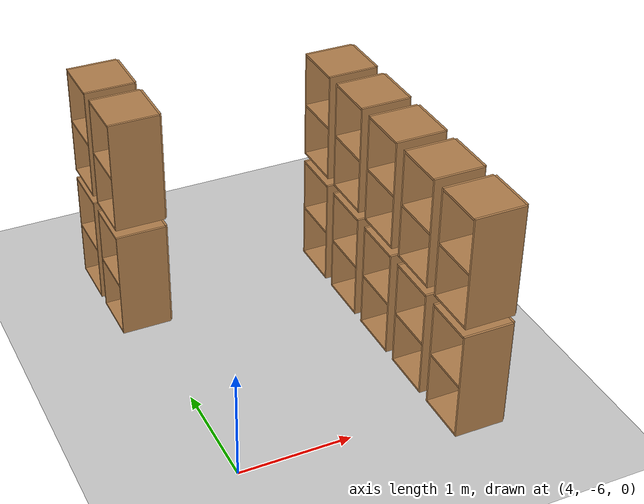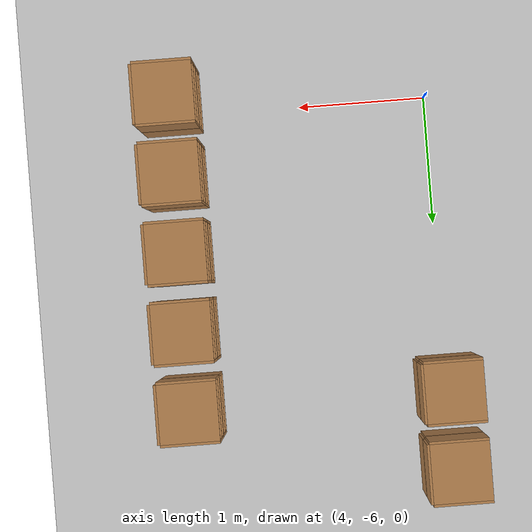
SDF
<sdf version="1.7">
 <world name="default">
  <model name="ground_plane">
   <static>1</static>
   <link name="link">
    <collision name="collision">
     <geometry><plane><normal>0 0 1</normal><size>100 100</size></plane></geometry>
     <surface><friction><ode><mu>100</mu><mu2>50</mu2></ode></friction></surface>
    </collision>
    <visual name="visual">
     <cast_shadows>0</cast_shadows>
     <geometry><plane><normal>0 0 1</normal><size>100 100</size></plane></geometry>
     <material>
      <script><uri>file://media/materials/scripts/gazebo.material</uri><name>Gazebo/Grey</name></script>
     </material>
    </visual>
   </link>
  </model>
  <model name="cabinet_27">
   <static>1</static>
   <link name="cabinet_bottom_plate">
    <inertial>
     <pose>0 0 -1 0 -0 0</pose>
     <inertia><ixx>2.05</ixx><ixy>0</ixy><ixz>0</ixz><iyy>2.05</iyy><iyz>0</iyz><izz>2.05</izz></inertia>
     <mass>25</mass>
    </inertial>
    <collision name="cabinet_bottom_plate_geom">
     <pose>0 0 0.01 0 -0 0</pose>
     <geometry><box><size>0.45 0.45 0.02</size></box></geometry>
    </collision>
    <visual name="cabinet_bottom_plate_geom_visual">
     <pose>0 0 0.01 0 -0 0</pose>
     <geometry><box><size>0.45 0.45 0.02</size></box></geometry>
     <material>
      <script><uri>file://media/materials/scripts/gazebo.material</uri><name>Gazebo/Wood</name></script>
     </material>
    </visual>
    <collision name="cabinet_bottom_plate_geom_cabinet_back_plate">
     <pose>0.235 0 0.51 0 -0 0</pose>
     <geometry><box><size>0.02 0.45 1.02</size></box></geometry>
    </collision>
    <visual name="cabinet_bottom_plate_geom_cabinet_back_plate_visual">
     <pose>0.235 0 0.51 0 -0 0</pose>
     <geometry><box><size>0.02 0.45 1.02</size></box></geometry>
     <material>
      <script><uri>file://media/materials/scripts/gazebo.material</uri><name>Gazebo/Wood</name></script>
     </material>
    </visual>
    <collision name="cabinet_bottom_plate_geom_cabinet_left_plate">
     <pose>0 0.235 0.51 0 -0 0</pose>
     <geometry><box><size>0.45 0.02 1.02</size></box></geometry>
    </collision>
    <visual name="cabinet_bottom_plate_geom_cabinet_left_plate_visual">
     <pose>0 0.235 0.51 0 -0 0</pose>
     <geometry><box><size>0.45 0.02 1.02</size></box></geometry>
     <material>
      <script><uri>file://media/materials/scripts/gazebo.material</uri><name>Gazebo/Wood</name></script>
     </material>
    </visual>
    <collision name="cabinet_bottom_plate_geom_cabinet_middle_plate">
     <pose>0 0 0.51 0 -0 0</pose>
     <geometry><box><size>0.45 0.45 0.02</size></box></geometry>
    </collision>
    <visual name="cabinet_bottom_plate_geom_cabinet_middle_plate_visual">
     <pose>0 0 0.51 0 -0 0</pose>
     <geometry><box><size>0.45 0.45 0.02</size></box></geometry>
     <material>
      <script><uri>file://media/materials/scripts/gazebo.material</uri><name>Gazebo/Wood</name></script>
     </material>
    </visual>
    <collision name="cabinet_bottom_plate_geom_cabinet_right_plate">
     <pose>0 -0.235 0.51 0 -0 0</pose>
     <geometry><box><size>0.45 0.02 1.02</size></box></geometry>
    </collision>
    <visual name="cabinet_bottom_plate_geom_cabinet_right_plate_visual">
     <pose>0 -0.235 0.51 0 -0 0</pose>
     <geometry><box><size>0.45 0.02 1.02</size></box></geometry>
     <material>
      <script><uri>file://media/materials/scripts/gazebo.material</uri><name>Gazebo/Wood</name></script>
     </material>
    </visual>
    <collision name="cabinet_bottom_plate_geom_cabinet_top_plate">
     <pose>0 0 1.01 0 -0 0</pose>
     <geometry><box><size>0.45 0.45 0.02</size></box></geometry>
    </collision>
    <visual name="cabinet_bottom_plate_geom_cabinet_top_plate_visual">
     <pose>0 0 1.01 0 -0 0</pose>
     <geometry><box><size>0.45 0.45 0.02</size></box></geometry>
     <material>
      <script><uri>file://media/materials/scripts/gazebo.material</uri><name>Gazebo/Wood</name></script>
     </material>
    </visual>
   </link>
   <pose>4 -3.1 0 0 -0 0</pose>
  </model>
  <model name="cabinet_28">
   <static>1</static>
   <link name="cabinet_bottom_plate">
    <inertial>
     <pose>0 0 -1 0 -0 0</pose>
     <inertia><ixx>2.05</ixx><ixy>0</ixy><ixz>0</ixz><iyy>2.05</iyy><iyz>0</iyz><izz>2.05</izz></inertia>
     <mass>25</mass>
    </inertial>
    <collision name="cabinet_bottom_plate_geom">
     <pose>0 0 0.01 0 -0 0</pose>
     <geometry><box><size>0.45 0.45 0.02</size></box></geometry>
    </collision>
    <visual name="cabinet_bottom_plate_geom_visual">
     <pose>0 0 0.01 0 -0 0</pose>
     <geometry><box><size>0.45 0.45 0.02</size></box></geometry>
     <material>
      <script><uri>file://media/materials/scripts/gazebo.material</uri><name>Gazebo/Wood</name></script>
     </material>
    </visual>
    <collision name="cabinet_bottom_plate_geom_cabinet_back_plate">
     <pose>0.235 0 0.51 0 -0 0</pose>
     <geometry><box><size>0.02 0.45 1.02</size></box></geometry>
    </collision>
    <visual name="cabinet_bottom_plate_geom_cabinet_back_plate_visual">
     <pose>0.235 0 0.51 0 -0 0</pose>
     <geometry><box><size>0.02 0.45 1.02</size></box></geometry>
     <material>
      <script><uri>file://media/materials/scripts/gazebo.material</uri><name>Gazebo/Wood</name></script>
     </material>
    </visual>
    <collision name="cabinet_bottom_plate_geom_cabinet_left_plate">
     <pose>0 0.235 0.51 0 -0 0</pose>
     <geometry><box><size>0.45 0.02 1.02</size></box></geometry>
    </collision>
    <visual name="cabinet_bottom_plate_geom_cabinet_left_plate_visual">
     <pose>0 0.235 0.51 0 -0 0</pose>
     <geometry><box><size>0.45 0.02 1.02</size></box></geometry>
     <material>
      <script><uri>file://media/materials/scripts/gazebo.material</uri><name>Gazebo/Wood</name></script>
     </material>
    </visual>
    <collision name="cabinet_bottom_plate_geom_cabinet_middle_plate">
     <pose>0 0 0.51 0 -0 0</pose>
     <geometry><box><size>0.45 0.45 0.02</size></box></geometry>
    </collision>
    <visual name="cabinet_bottom_plate_geom_cabinet_middle_plate_visual">
     <pose>0 0 0.51 0 -0 0</pose>
     <geometry><box><size>0.45 0.45 0.02</size></box></geometry>
     <material>
      <script><uri>file://media/materials/scripts/gazebo.material</uri><name>Gazebo/Wood</name></script>
     </material>
    </visual>
    <collision name="cabinet_bottom_plate_geom_cabinet_right_plate">
     <pose>0 -0.235 0.51 0 -0 0</pose>
     <geometry><box><size>0.45 0.02 1.02</size></box></geometry>
    </collision>
    <visual name="cabinet_bottom_plate_geom_cabinet_right_plate_visual">
     <pose>0 -0.235 0.51 0 -0 0</pose>
     <geometry><box><size>0.45 0.02 1.02</size></box></geometry>
     <material>
      <script><uri>file://media/materials/scripts/gazebo.material</uri><name>Gazebo/Wood</name></script>
     </material>
    </visual>
    <collision name="cabinet_bottom_plate_geom_cabinet_top_plate">
     <pose>0 0 1.01 0 -0 0</pose>
     <geometry><box><size>0.45 0.45 0.02</size></box></geometry>
    </collision>
    <visual name="cabinet_bottom_plate_geom_cabinet_top_plate_visual">
     <pose>0 0 1.01 0 -0 0</pose>
     <geometry><box><size>0.45 0.45 0.02</size></box></geometry>
     <material>
      <script><uri>file://media/materials/scripts/gazebo.material</uri><name>Gazebo/Wood</name></script>
     </material>
    </visual>
   </link>
   <pose>4 -3.7 0 0 -0 0</pose>
  </model>
  <model name="cabinet_42">
   <static>1</static>
   <link name="cabinet_bottom_plate">
    <inertial>
     <pose>0 0 -1 0 -0 0</pose>
     <inertia><ixx>2.05</ixx><ixy>0</ixy><ixz>0</ixz><iyy>2.05</iyy><iyz>0</iyz><izz>2.05</izz></inertia>
     <mass>25</mass>
    </inertial>
    <collision name="cabinet_bottom_plate_geom">
     <pose>0 0 0.01 0 -0 0</pose>
     <geometry><box><size>0.45 0.45 0.02</size></box></geometry>
    </collision>
    <visual name="cabinet_bottom_plate_geom_visual">
     <pose>0 0 0.01 0 -0 0</pose>
     <geometry><box><size>0.45 0.45 0.02</size></box></geometry>
     <material>
      <script><uri>file://media/materials/scripts/gazebo.material</uri><name>Gazebo/Wood</name></script>
     </material>
    </visual>
    <collision name="cabinet_bottom_plate_geom_cabinet_back_plate">
     <pose>0.235 0 0.51 0 -0 0</pose>
     <geometry><box><size>0.02 0.45 1.02</size></box></geometry>
    </collision>
    <visual name="cabinet_bottom_plate_geom_cabinet_back_plate_visual">
     <pose>0.235 0 0.51 0 -0 0</pose>
     <geometry><box><size>0.02 0.45 1.02</size></box></geometry>
     <material>
      <script><uri>file://media/materials/scripts/gazebo.material</uri><name>Gazebo/Wood</name></script>
     </material>
    </visual>
    <collision name="cabinet_bottom_plate_geom_cabinet_left_plate">
     <pose>0 0.235 0.51 0 -0 0</pose>
     <geometry><box><size>0.45 0.02 1.02</size></box></geometry>
    </collision>
    <visual name="cabinet_bottom_plate_geom_cabinet_left_plate_visual">
     <pose>0 0.235 0.51 0 -0 0</pose>
     <geometry><box><size>0.45 0.02 1.02</size></box></geometry>
     <material>
      <script><uri>file://media/materials/scripts/gazebo.material</uri><name>Gazebo/Wood</name></script>
     </material>
    </visual>
    <collision name="cabinet_bottom_plate_geom_cabinet_middle_plate">
     <pose>0 0 0.51 0 -0 0</pose>
     <geometry><box><size>0.45 0.45 0.02</size></box></geometry>
    </collision>
    <visual name="cabinet_bottom_plate_geom_cabinet_middle_plate_visual">
     <pose>0 0 0.51 0 -0 0</pose>
     <geometry><box><size>0.45 0.45 0.02</size></box></geometry>
     <material>
      <script><uri>file://media/materials/scripts/gazebo.material</uri><name>Gazebo/Wood</name></script>
     </material>
    </visual>
    <collision name="cabinet_bottom_plate_geom_cabinet_right_plate">
     <pose>0 -0.235 0.51 0 -0 0</pose>
     <geometry><box><size>0.45 0.02 1.02</size></box></geometry>
    </collision>
    <visual name="cabinet_bottom_plate_geom_cabinet_right_plate_visual">
     <pose>0 -0.235 0.51 0 -0 0</pose>
     <geometry><box><size>0.45 0.02 1.02</size></box></geometry>
     <material>
      <script><uri>file://media/materials/scripts/gazebo.material</uri><name>Gazebo/Wood</name></script>
     </material>
    </visual>
    <collision name="cabinet_bottom_plate_geom_cabinet_top_plate">
     <pose>0 0 1.01 0 -0 0</pose>
     <geometry><box><size>0.45 0.45 0.02</size></box></geometry>
    </collision>
    <visual name="cabinet_bottom_plate_geom_cabinet_top_plate_visual">
     <pose>0 0 1.01 0 -0 0</pose>
     <geometry><box><size>0.45 0.45 0.02</size></box></geometry>
     <material>
      <script><uri>file://media/materials/scripts/gazebo.material</uri><name>Gazebo/Wood</name></script>
     </material>
    </visual>
   </link>
   <pose>6 -3.7 0 0 -0 0</pose>
  </model>
  <model name="cabinet_43">
   <static>1</static>
   <link name="cabinet_bottom_plate">
    <inertial>
     <pose>0 0 -1 0 -0 0</pose>
     <inertia><ixx>2.05</ixx><ixy>0</ixy><ixz>0</ixz><iyy>2.05</iyy><iyz>0</iyz><izz>2.05</izz></inertia>
     <mass>25</mass>
    </inertial>
    <collision name="cabinet_bottom_plate_geom">
     <pose>0 0 0.01 0 -0 0</pose>
     <geometry><box><size>0.45 0.45 0.02</size></box></geometry>
    </collision>
    <visual name="cabinet_bottom_plate_geom_visual">
     <pose>0 0 0.01 0 -0 0</pose>
     <geometry><box><size>0.45 0.45 0.02</size></box></geometry>
     <material>
      <script><uri>file://media/materials/scripts/gazebo.material</uri><name>Gazebo/Wood</name></script>
     </material>
    </visual>
    <collision name="cabinet_bottom_plate_geom_cabinet_back_plate">
     <pose>0.235 0 0.51 0 -0 0</pose>
     <geometry><box><size>0.02 0.45 1.02</size></box></geometry>
    </collision>
    <visual name="cabinet_bottom_plate_geom_cabinet_back_plate_visual">
     <pose>0.235 0 0.51 0 -0 0</pose>
     <geometry><box><size>0.02 0.45 1.02</size></box></geometry>
     <material>
      <script><uri>file://media/materials/scripts/gazebo.material</uri><name>Gazebo/Wood</name></script>
     </material>
    </visual>
    <collision name="cabinet_bottom_plate_geom_cabinet_left_plate">
     <pose>0 0.235 0.51 0 -0 0</pose>
     <geometry><box><size>0.45 0.02 1.02</size></box></geometry>
    </collision>
    <visual name="cabinet_bottom_plate_geom_cabinet_left_plate_visual">
     <pose>0 0.235 0.51 0 -0 0</pose>
     <geometry><box><size>0.45 0.02 1.02</size></box></geometry>
     <material>
      <script><uri>file://media/materials/scripts/gazebo.material</uri><name>Gazebo/Wood</name></script>
     </material>
    </visual>
    <collision name="cabinet_bottom_plate_geom_cabinet_middle_plate">
     <pose>0 0 0.51 0 -0 0</pose>
     <geometry><box><size>0.45 0.45 0.02</size></box></geometry>
    </collision>
    <visual name="cabinet_bottom_plate_geom_cabinet_middle_plate_visual">
     <pose>0 0 0.51 0 -0 0</pose>
     <geometry><box><size>0.45 0.45 0.02</size></box></geometry>
     <material>
      <script><uri>file://media/materials/scripts/gazebo.material</uri><name>Gazebo/Wood</name></script>
     </material>
    </visual>
    <collision name="cabinet_bottom_plate_geom_cabinet_right_plate">
     <pose>0 -0.235 0.51 0 -0 0</pose>
     <geometry><box><size>0.45 0.02 1.02</size></box></geometry>
    </collision>
    <visual name="cabinet_bottom_plate_geom_cabinet_right_plate_visual">
     <pose>0 -0.235 0.51 0 -0 0</pose>
     <geometry><box><size>0.45 0.02 1.02</size></box></geometry>
     <material>
      <script><uri>file://media/materials/scripts/gazebo.material</uri><name>Gazebo/Wood</name></script>
     </material>
    </visual>
    <collision name="cabinet_bottom_plate_geom_cabinet_top_plate">
     <pose>0 0 1.01 0 -0 0</pose>
     <geometry><box><size>0.45 0.45 0.02</size></box></geometry>
    </collision>
    <visual name="cabinet_bottom_plate_geom_cabinet_top_plate_visual">
     <pose>0 0 1.01 0 -0 0</pose>
     <geometry><box><size>0.45 0.45 0.02</size></box></geometry>
     <material>
      <script><uri>file://media/materials/scripts/gazebo.material</uri><name>Gazebo/Wood</name></script>
     </material>
    </visual>
   </link>
   <pose>6 -4.3 0 0 -0 0</pose>
  </model>
  <model name="cabinet_44">
   <static>1</static>
   <link name="cabinet_bottom_plate">
    <inertial>
     <pose>0 0 -1 0 -0 0</pose>
     <inertia><ixx>2.05</ixx><ixy>0</ixy><ixz>0</ixz><iyy>2.05</iyy><iyz>0</iyz><izz>2.05</izz></inertia>
     <mass>25</mass>
    </inertial>
    <collision name="cabinet_bottom_plate_geom">
     <pose>0 0 0.01 0 -0 0</pose>
     <geometry><box><size>0.45 0.45 0.02</size></box></geometry>
    </collision>
    <visual name="cabinet_bottom_plate_geom_visual">
     <pose>0 0 0.01 0 -0 0</pose>
     <geometry><box><size>0.45 0.45 0.02</size></box></geometry>
     <material>
      <script><uri>file://media/materials/scripts/gazebo.material</uri><name>Gazebo/Wood</name></script>
     </material>
    </visual>
    <collision name="cabinet_bottom_plate_geom_cabinet_back_plate">
     <pose>0.235 0 0.51 0 -0 0</pose>
     <geometry><box><size>0.02 0.45 1.02</size></box></geometry>
    </collision>
    <visual name="cabinet_bottom_plate_geom_cabinet_back_plate_visual">
     <pose>0.235 0 0.51 0 -0 0</pose>
     <geometry><box><size>0.02 0.45 1.02</size></box></geometry>
     <material>
      <script><uri>file://media/materials/scripts/gazebo.material</uri><name>Gazebo/Wood</name></script>
     </material>
    </visual>
    <collision name="cabinet_bottom_plate_geom_cabinet_left_plate">
     <pose>0 0.235 0.51 0 -0 0</pose>
     <geometry><box><size>0.45 0.02 1.02</size></box></geometry>
    </collision>
    <visual name="cabinet_bottom_plate_geom_cabinet_left_plate_visual">
     <pose>0 0.235 0.51 0 -0 0</pose>
     <geometry><box><size>0.45 0.02 1.02</size></box></geometry>
     <material>
      <script><uri>file://media/materials/scripts/gazebo.material</uri><name>Gazebo/Wood</name></script>
     </material>
    </visual>
    <collision name="cabinet_bottom_plate_geom_cabinet_middle_plate">
     <pose>0 0 0.51 0 -0 0</pose>
     <geometry><box><size>0.45 0.45 0.02</size></box></geometry>
    </collision>
    <visual name="cabinet_bottom_plate_geom_cabinet_middle_plate_visual">
     <pose>0 0 0.51 0 -0 0</pose>
     <geometry><box><size>0.45 0.45 0.02</size></box></geometry>
     <material>
      <script><uri>file://media/materials/scripts/gazebo.material</uri><name>Gazebo/Wood</name></script>
     </material>
    </visual>
    <collision name="cabinet_bottom_plate_geom_cabinet_right_plate">
     <pose>0 -0.235 0.51 0 -0 0</pose>
     <geometry><box><size>0.45 0.02 1.02</size></box></geometry>
    </collision>
    <visual name="cabinet_bottom_plate_geom_cabinet_right_plate_visual">
     <pose>0 -0.235 0.51 0 -0 0</pose>
     <geometry><box><size>0.45 0.02 1.02</size></box></geometry>
     <material>
      <script><uri>file://media/materials/scripts/gazebo.material</uri><name>Gazebo/Wood</name></script>
     </material>
    </visual>
    <collision name="cabinet_bottom_plate_geom_cabinet_top_plate">
     <pose>0 0 1.01 0 -0 0</pose>
     <geometry><box><size>0.45 0.45 0.02</size></box></geometry>
    </collision>
    <visual name="cabinet_bottom_plate_geom_cabinet_top_plate_visual">
     <pose>0 0 1.01 0 -0 0</pose>
     <geometry><box><size>0.45 0.45 0.02</size></box></geometry>
     <material>
      <script><uri>file://media/materials/scripts/gazebo.material</uri><name>Gazebo/Wood</name></script>
     </material>
    </visual>
   </link>
   <pose>6 -4.9 0 0 -0 0</pose>
  </model>
  <model name="cabinet_45">
   <static>1</static>
   <link name="cabinet_bottom_plate">
    <inertial>
     <pose>0 0 -1 0 -0 0</pose>
     <inertia><ixx>2.05</ixx><ixy>0</ixy><ixz>0</ixz><iyy>2.05</iyy><iyz>0</iyz><izz>2.05</izz></inertia>
     <mass>25</mass>
    </inertial>
    <collision name="cabinet_bottom_plate_geom">
     <pose>0 0 0.01 0 -0 0</pose>
     <geometry><box><size>0.45 0.45 0.02</size></box></geometry>
    </collision>
    <visual name="cabinet_bottom_plate_geom_visual">
     <pose>0 0 0.01 0 -0 0</pose>
     <geometry><box><size>0.45 0.45 0.02</size></box></geometry>
     <material>
      <script><uri>file://media/materials/scripts/gazebo.material</uri><name>Gazebo/Wood</name></script>
     </material>
    </visual>
    <collision name="cabinet_bottom_plate_geom_cabinet_back_plate">
     <pose>0.235 0 0.51 0 -0 0</pose>
     <geometry><box><size>0.02 0.45 1.02</size></box></geometry>
    </collision>
    <visual name="cabinet_bottom_plate_geom_cabinet_back_plate_visual">
     <pose>0.235 0 0.51 0 -0 0</pose>
     <geometry><box><size>0.02 0.45 1.02</size></box></geometry>
     <material>
      <script><uri>file://media/materials/scripts/gazebo.material</uri><name>Gazebo/Wood</name></script>
     </material>
    </visual>
    <collision name="cabinet_bottom_plate_geom_cabinet_left_plate">
     <pose>0 0.235 0.51 0 -0 0</pose>
     <geometry><box><size>0.45 0.02 1.02</size></box></geometry>
    </collision>
    <visual name="cabinet_bottom_plate_geom_cabinet_left_plate_visual">
     <pose>0 0.235 0.51 0 -0 0</pose>
     <geometry><box><size>0.45 0.02 1.02</size></box></geometry>
     <material>
      <script><uri>file://media/materials/scripts/gazebo.material</uri><name>Gazebo/Wood</name></script>
     </material>
    </visual>
    <collision name="cabinet_bottom_plate_geom_cabinet_middle_plate">
     <pose>0 0 0.51 0 -0 0</pose>
     <geometry><box><size>0.45 0.45 0.02</size></box></geometry>
    </collision>
    <visual name="cabinet_bottom_plate_geom_cabinet_middle_plate_visual">
     <pose>0 0 0.51 0 -0 0</pose>
     <geometry><box><size>0.45 0.45 0.02</size></box></geometry>
     <material>
      <script><uri>file://media/materials/scripts/gazebo.material</uri><name>Gazebo/Wood</name></script>
     </material>
    </visual>
    <collision name="cabinet_bottom_plate_geom_cabinet_right_plate">
     <pose>0 -0.235 0.51 0 -0 0</pose>
     <geometry><box><size>0.45 0.02 1.02</size></box></geometry>
    </collision>
    <visual name="cabinet_bottom_plate_geom_cabinet_right_plate_visual">
     <pose>0 -0.235 0.51 0 -0 0</pose>
     <geometry><box><size>0.45 0.02 1.02</size></box></geometry>
     <material>
      <script><uri>file://media/materials/scripts/gazebo.material</uri><name>Gazebo/Wood</name></script>
     </material>
    </visual>
    <collision name="cabinet_bottom_plate_geom_cabinet_top_plate">
     <pose>0 0 1.01 0 -0 0</pose>
     <geometry><box><size>0.45 0.45 0.02</size></box></geometry>
    </collision>
    <visual name="cabinet_bottom_plate_geom_cabinet_top_plate_visual">
     <pose>0 0 1.01 0 -0 0</pose>
     <geometry><box><size>0.45 0.45 0.02</size></box></geometry>
     <material>
      <script><uri>file://media/materials/scripts/gazebo.material</uri><name>Gazebo/Wood</name></script>
     </material>
    </visual>
   </link>
   <pose>6 -5.5 0 0 -0 0</pose>
  </model>
  <model name="cabinet_46">
   <static>1</static>
   <link name="cabinet_bottom_plate">
    <inertial>
     <pose>0 0 -1 0 -0 0</pose>
     <inertia><ixx>2.05</ixx><ixy>0</ixy><ixz>0</ixz><iyy>2.05</iyy><iyz>0</iyz><izz>2.05</izz></inertia>
     <mass>25</mass>
    </inertial>
    <collision name="cabinet_bottom_plate_geom">
     <pose>0 0 0.01 0 -0 0</pose>
     <geometry><box><size>0.45 0.45 0.02</size></box></geometry>
    </collision>
    <visual name="cabinet_bottom_plate_geom_visual">
     <pose>0 0 0.01 0 -0 0</pose>
     <geometry><box><size>0.45 0.45 0.02</size></box></geometry>
     <material>
      <script><uri>file://media/materials/scripts/gazebo.material</uri><name>Gazebo/Wood</name></script>
     </material>
    </visual>
    <collision name="cabinet_bottom_plate_geom_cabinet_back_plate">
     <pose>0.235 0 0.51 0 -0 0</pose>
     <geometry><box><size>0.02 0.45 1.02</size></box></geometry>
    </collision>
    <visual name="cabinet_bottom_plate_geom_cabinet_back_plate_visual">
     <pose>0.235 0 0.51 0 -0 0</pose>
     <geometry><box><size>0.02 0.45 1.02</size></box></geometry>
     <material>
      <script><uri>file://media/materials/scripts/gazebo.material</uri><name>Gazebo/Wood</name></script>
     </material>
    </visual>
    <collision name="cabinet_bottom_plate_geom_cabinet_left_plate">
     <pose>0 0.235 0.51 0 -0 0</pose>
     <geometry><box><size>0.45 0.02 1.02</size></box></geometry>
    </collision>
    <visual name="cabinet_bottom_plate_geom_cabinet_left_plate_visual">
     <pose>0 0.235 0.51 0 -0 0</pose>
     <geometry><box><size>0.45 0.02 1.02</size></box></geometry>
     <material>
      <script><uri>file://media/materials/scripts/gazebo.material</uri><name>Gazebo/Wood</name></script>
     </material>
    </visual>
    <collision name="cabinet_bottom_plate_geom_cabinet_middle_plate">
     <pose>0 0 0.51 0 -0 0</pose>
     <geometry><box><size>0.45 0.45 0.02</size></box></geometry>
    </collision>
    <visual name="cabinet_bottom_plate_geom_cabinet_middle_plate_visual">
     <pose>0 0 0.51 0 -0 0</pose>
     <geometry><box><size>0.45 0.45 0.02</size></box></geometry>
     <material>
      <script><uri>file://media/materials/scripts/gazebo.material</uri><name>Gazebo/Wood</name></script>
     </material>
    </visual>
    <collision name="cabinet_bottom_plate_geom_cabinet_right_plate">
     <pose>0 -0.235 0.51 0 -0 0</pose>
     <geometry><box><size>0.45 0.02 1.02</size></box></geometry>
    </collision>
    <visual name="cabinet_bottom_plate_geom_cabinet_right_plate_visual">
     <pose>0 -0.235 0.51 0 -0 0</pose>
     <geometry><box><size>0.45 0.02 1.02</size></box></geometry>
     <material>
      <script><uri>file://media/materials/scripts/gazebo.material</uri><name>Gazebo/Wood</name></script>
     </material>
    </visual>
    <collision name="cabinet_bottom_plate_geom_cabinet_top_plate">
     <pose>0 0 1.01 0 -0 0</pose>
     <geometry><box><size>0.45 0.45 0.02</size></box></geometry>
    </collision>
    <visual name="cabinet_bottom_plate_geom_cabinet_top_plate_visual">
     <pose>0 0 1.01 0 -0 0</pose>
     <geometry><box><size>0.45 0.45 0.02</size></box></geometry>
     <material>
      <script><uri>file://media/materials/scripts/gazebo.material</uri><name>Gazebo/Wood</name></script>
     </material>
    </visual>
   </link>
   <pose>6 -6.1 0 0 -0 0</pose>
  </model>
  <model name="cabinet_80">
   <static>1</static>
   <link name="cabinet_bottom_plate">
    <inertial>
     <pose>0 0 -1 0 -0 0</pose>
     <inertia><ixx>2.05</ixx><ixy>0</ixy><ixz>0</ixz><iyy>2.05</iyy><iyz>0</iyz><izz>2.05</izz></inertia>
     <mass>25</mass>
    </inertial>
    <collision name="cabinet_bottom_plate_geom">
     <pose>0 0 0.01 0 -0 0</pose>
     <geometry><box><size>0.45 0.45 0.02</size></box></geometry>
    </collision>
    <visual name="cabinet_bottom_plate_geom_visual">
     <pose>0 0 0.01 0 -0 0</pose>
     <geometry><box><size>0.45 0.45 0.02</size></box></geometry>
     <material>
      <script><uri>file://media/materials/scripts/gazebo.material</uri><name>Gazebo/Wood</name></script>
     </material>
    </visual>
    <collision name="cabinet_bottom_plate_geom_cabinet_back_plate">
     <pose>0.235 0 0.51 0 -0 0</pose>
     <geometry><box><size>0.02 0.45 1.02</size></box></geometry>
    </collision>
    <visual name="cabinet_bottom_plate_geom_cabinet_back_plate_visual">
     <pose>0.235 0 0.51 0 -0 0</pose>
     <geometry><box><size>0.02 0.45 1.02</size></box></geometry>
     <material>
      <script><uri>file://media/materials/scripts/gazebo.material</uri><name>Gazebo/Wood</name></script>
     </material>
    </visual>
    <collision name="cabinet_bottom_plate_geom_cabinet_left_plate">
     <pose>0 0.235 0.51 0 -0 0</pose>
     <geometry><box><size>0.45 0.02 1.02</size></box></geometry>
    </collision>
    <visual name="cabinet_bottom_plate_geom_cabinet_left_plate_visual">
     <pose>0 0.235 0.51 0 -0 0</pose>
     <geometry><box><size>0.45 0.02 1.02</size></box></geometry>
     <material>
      <script><uri>file://media/materials/scripts/gazebo.material</uri><name>Gazebo/Wood</name></script>
     </material>
    </visual>
    <collision name="cabinet_bottom_plate_geom_cabinet_middle_plate">
     <pose>0 0 0.51 0 -0 0</pose>
     <geometry><box><size>0.45 0.45 0.02</size></box></geometry>
    </collision>
    <visual name="cabinet_bottom_plate_geom_cabinet_middle_plate_visual">
     <pose>0 0 0.51 0 -0 0</pose>
     <geometry><box><size>0.45 0.45 0.02</size></box></geometry>
     <material>
      <script><uri>file://media/materials/scripts/gazebo.material</uri><name>Gazebo/Wood</name></script>
     </material>
    </visual>
    <collision name="cabinet_bottom_plate_geom_cabinet_right_plate">
     <pose>0 -0.235 0.51 0 -0 0</pose>
     <geometry><box><size>0.45 0.02 1.02</size></box></geometry>
    </collision>
    <visual name="cabinet_bottom_plate_geom_cabinet_right_plate_visual">
     <pose>0 -0.235 0.51 0 -0 0</pose>
     <geometry><box><size>0.45 0.02 1.02</size></box></geometry>
     <material>
      <script><uri>file://media/materials/scripts/gazebo.material</uri><name>Gazebo/Wood</name></script>
     </material>
    </visual>
    <collision name="cabinet_bottom_plate_geom_cabinet_top_plate">
     <pose>0 0 1.01 0 -0 0</pose>
     <geometry><box><size>0.45 0.45 0.02</size></box></geometry>
    </collision>
    <visual name="cabinet_bottom_plate_geom_cabinet_top_plate_visual">
     <pose>0 0 1.01 0 -0 0</pose>
     <geometry><box><size>0.45 0.45 0.02</size></box></geometry>
     <material>
      <script><uri>file://media/materials/scripts/gazebo.material</uri><name>Gazebo/Wood</name></script>
     </material>
    </visual>
   </link>
   <pose>6 -3.7 1.1 0 -0 0</pose>
  </model>
  <model name="cabinet_81">
   <static>1</static>
   <link name="cabinet_bottom_plate">
    <inertial>
     <pose>0 0 -1 0 -0 0</pose>
     <inertia><ixx>2.05</ixx><ixy>0</ixy><ixz>0</ixz><iyy>2.05</iyy><iyz>0</iyz><izz>2.05</izz></inertia>
     <mass>25</mass>
    </inertial>
    <collision name="cabinet_bottom_plate_geom">
     <pose>0 0 0.01 0 -0 0</pose>
     <geometry><box><size>0.45 0.45 0.02</size></box></geometry>
    </collision>
    <visual name="cabinet_bottom_plate_geom_visual">
     <pose>0 0 0.01 0 -0 0</pose>
     <geometry><box><size>0.45 0.45 0.02</size></box></geometry>
     <material>
      <script><uri>file://media/materials/scripts/gazebo.material</uri><name>Gazebo/Wood</name></script>
     </material>
    </visual>
    <collision name="cabinet_bottom_plate_geom_cabinet_back_plate">
     <pose>0.235 0 0.51 0 -0 0</pose>
     <geometry><box><size>0.02 0.45 1.02</size></box></geometry>
    </collision>
    <visual name="cabinet_bottom_plate_geom_cabinet_back_plate_visual">
     <pose>0.235 0 0.51 0 -0 0</pose>
     <geometry><box><size>0.02 0.45 1.02</size></box></geometry>
     <material>
      <script><uri>file://media/materials/scripts/gazebo.material</uri><name>Gazebo/Wood</name></script>
     </material>
    </visual>
    <collision name="cabinet_bottom_plate_geom_cabinet_left_plate">
     <pose>0 0.235 0.51 0 -0 0</pose>
     <geometry><box><size>0.45 0.02 1.02</size></box></geometry>
    </collision>
    <visual name="cabinet_bottom_plate_geom_cabinet_left_plate_visual">
     <pose>0 0.235 0.51 0 -0 0</pose>
     <geometry><box><size>0.45 0.02 1.02</size></box></geometry>
     <material>
      <script><uri>file://media/materials/scripts/gazebo.material</uri><name>Gazebo/Wood</name></script>
     </material>
    </visual>
    <collision name="cabinet_bottom_plate_geom_cabinet_middle_plate">
     <pose>0 0 0.51 0 -0 0</pose>
     <geometry><box><size>0.45 0.45 0.02</size></box></geometry>
    </collision>
    <visual name="cabinet_bottom_plate_geom_cabinet_middle_plate_visual">
     <pose>0 0 0.51 0 -0 0</pose>
     <geometry><box><size>0.45 0.45 0.02</size></box></geometry>
     <material>
      <script><uri>file://media/materials/scripts/gazebo.material</uri><name>Gazebo/Wood</name></script>
     </material>
    </visual>
    <collision name="cabinet_bottom_plate_geom_cabinet_right_plate">
     <pose>0 -0.235 0.51 0 -0 0</pose>
     <geometry><box><size>0.45 0.02 1.02</size></box></geometry>
    </collision>
    <visual name="cabinet_bottom_plate_geom_cabinet_right_plate_visual">
     <pose>0 -0.235 0.51 0 -0 0</pose>
     <geometry><box><size>0.45 0.02 1.02</size></box></geometry>
     <material>
      <script><uri>file://media/materials/scripts/gazebo.material</uri><name>Gazebo/Wood</name></script>
     </material>
    </visual>
    <collision name="cabinet_bottom_plate_geom_cabinet_top_plate">
     <pose>0 0 1.01 0 -0 0</pose>
     <geometry><box><size>0.45 0.45 0.02</size></box></geometry>
    </collision>
    <visual name="cabinet_bottom_plate_geom_cabinet_top_plate_visual">
     <pose>0 0 1.01 0 -0 0</pose>
     <geometry><box><size>0.45 0.45 0.02</size></box></geometry>
     <material>
      <script><uri>file://media/materials/scripts/gazebo.material</uri><name>Gazebo/Wood</name></script>
     </material>
    </visual>
   </link>
   <pose>6 -4.3 1.1 0 -0 0</pose>
  </model>
  <model name="cabinet_82">
   <static>1</static>
   <link name="cabinet_bottom_plate">
    <inertial>
     <pose>0 0 -1 0 -0 0</pose>
     <inertia><ixx>2.05</ixx><ixy>0</ixy><ixz>0</ixz><iyy>2.05</iyy><iyz>0</iyz><izz>2.05</izz></inertia>
     <mass>25</mass>
    </inertial>
    <collision name="cabinet_bottom_plate_geom">
     <pose>0 0 0.01 0 -0 0</pose>
     <geometry><box><size>0.45 0.45 0.02</size></box></geometry>
    </collision>
    <visual name="cabinet_bottom_plate_geom_visual">
     <pose>0 0 0.01 0 -0 0</pose>
     <geometry><box><size>0.45 0.45 0.02</size></box></geometry>
     <material>
      <script><uri>file://media/materials/scripts/gazebo.material</uri><name>Gazebo/Wood</name></script>
     </material>
    </visual>
    <collision name="cabinet_bottom_plate_geom_cabinet_back_plate">
     <pose>0.235 0 0.51 0 -0 0</pose>
     <geometry><box><size>0.02 0.45 1.02</size></box></geometry>
    </collision>
    <visual name="cabinet_bottom_plate_geom_cabinet_back_plate_visual">
     <pose>0.235 0 0.51 0 -0 0</pose>
     <geometry><box><size>0.02 0.45 1.02</size></box></geometry>
     <material>
      <script><uri>file://media/materials/scripts/gazebo.material</uri><name>Gazebo/Wood</name></script>
     </material>
    </visual>
    <collision name="cabinet_bottom_plate_geom_cabinet_left_plate">
     <pose>0 0.235 0.51 0 -0 0</pose>
     <geometry><box><size>0.45 0.02 1.02</size></box></geometry>
    </collision>
    <visual name="cabinet_bottom_plate_geom_cabinet_left_plate_visual">
     <pose>0 0.235 0.51 0 -0 0</pose>
     <geometry><box><size>0.45 0.02 1.02</size></box></geometry>
     <material>
      <script><uri>file://media/materials/scripts/gazebo.material</uri><name>Gazebo/Wood</name></script>
     </material>
    </visual>
    <collision name="cabinet_bottom_plate_geom_cabinet_middle_plate">
     <pose>0 0 0.51 0 -0 0</pose>
     <geometry><box><size>0.45 0.45 0.02</size></box></geometry>
    </collision>
    <visual name="cabinet_bottom_plate_geom_cabinet_middle_plate_visual">
     <pose>0 0 0.51 0 -0 0</pose>
     <geometry><box><size>0.45 0.45 0.02</size></box></geometry>
     <material>
      <script><uri>file://media/materials/scripts/gazebo.material</uri><name>Gazebo/Wood</name></script>
     </material>
    </visual>
    <collision name="cabinet_bottom_plate_geom_cabinet_right_plate">
     <pose>0 -0.235 0.51 0 -0 0</pose>
     <geometry><box><size>0.45 0.02 1.02</size></box></geometry>
    </collision>
    <visual name="cabinet_bottom_plate_geom_cabinet_right_plate_visual">
     <pose>0 -0.235 0.51 0 -0 0</pose>
     <geometry><box><size>0.45 0.02 1.02</size></box></geometry>
     <material>
      <script><uri>file://media/materials/scripts/gazebo.material</uri><name>Gazebo/Wood</name></script>
     </material>
    </visual>
    <collision name="cabinet_bottom_plate_geom_cabinet_top_plate">
     <pose>0 0 1.01 0 -0 0</pose>
     <geometry><box><size>0.45 0.45 0.02</size></box></geometry>
    </collision>
    <visual name="cabinet_bottom_plate_geom_cabinet_top_plate_visual">
     <pose>0 0 1.01 0 -0 0</pose>
     <geometry><box><size>0.45 0.45 0.02</size></box></geometry>
     <material>
      <script><uri>file://media/materials/scripts/gazebo.material</uri><name>Gazebo/Wood</name></script>
     </material>
    </visual>
   </link>
   <pose>6 -4.9 1.1 0 -0 0</pose>
  </model>
  <model name="cabinet_83">
   <static>1</static>
   <link name="cabinet_bottom_plate">
    <inertial>
     <pose>0 0 -1 0 -0 0</pose>
     <inertia><ixx>2.05</ixx><ixy>0</ixy><ixz>0</ixz><iyy>2.05</iyy><iyz>0</iyz><izz>2.05</izz></inertia>
     <mass>25</mass>
    </inertial>
    <collision name="cabinet_bottom_plate_geom">
     <pose>0 0 0.01 0 -0 0</pose>
     <geometry><box><size>0.45 0.45 0.02</size></box></geometry>
    </collision>
    <visual name="cabinet_bottom_plate_geom_visual">
     <pose>0 0 0.01 0 -0 0</pose>
     <geometry><box><size>0.45 0.45 0.02</size></box></geometry>
     <material>
      <script><uri>file://media/materials/scripts/gazebo.material</uri><name>Gazebo/Wood</name></script>
     </material>
    </visual>
    <collision name="cabinet_bottom_plate_geom_cabinet_back_plate">
     <pose>0.235 0 0.51 0 -0 0</pose>
     <geometry><box><size>0.02 0.45 1.02</size></box></geometry>
    </collision>
    <visual name="cabinet_bottom_plate_geom_cabinet_back_plate_visual">
     <pose>0.235 0 0.51 0 -0 0</pose>
     <geometry><box><size>0.02 0.45 1.02</size></box></geometry>
     <material>
      <script><uri>file://media/materials/scripts/gazebo.material</uri><name>Gazebo/Wood</name></script>
     </material>
    </visual>
    <collision name="cabinet_bottom_plate_geom_cabinet_left_plate">
     <pose>0 0.235 0.51 0 -0 0</pose>
     <geometry><box><size>0.45 0.02 1.02</size></box></geometry>
    </collision>
    <visual name="cabinet_bottom_plate_geom_cabinet_left_plate_visual">
     <pose>0 0.235 0.51 0 -0 0</pose>
     <geometry><box><size>0.45 0.02 1.02</size></box></geometry>
     <material>
      <script><uri>file://media/materials/scripts/gazebo.material</uri><name>Gazebo/Wood</name></script>
     </material>
    </visual>
    <collision name="cabinet_bottom_plate_geom_cabinet_middle_plate">
     <pose>0 0 0.51 0 -0 0</pose>
     <geometry><box><size>0.45 0.45 0.02</size></box></geometry>
    </collision>
    <visual name="cabinet_bottom_plate_geom_cabinet_middle_plate_visual">
     <pose>0 0 0.51 0 -0 0</pose>
     <geometry><box><size>0.45 0.45 0.02</size></box></geometry>
     <material>
      <script><uri>file://media/materials/scripts/gazebo.material</uri><name>Gazebo/Wood</name></script>
     </material>
    </visual>
    <collision name="cabinet_bottom_plate_geom_cabinet_right_plate">
     <pose>0 -0.235 0.51 0 -0 0</pose>
     <geometry><box><size>0.45 0.02 1.02</size></box></geometry>
    </collision>
    <visual name="cabinet_bottom_plate_geom_cabinet_right_plate_visual">
     <pose>0 -0.235 0.51 0 -0 0</pose>
     <geometry><box><size>0.45 0.02 1.02</size></box></geometry>
     <material>
      <script><uri>file://media/materials/scripts/gazebo.material</uri><name>Gazebo/Wood</name></script>
     </material>
    </visual>
    <collision name="cabinet_bottom_plate_geom_cabinet_top_plate">
     <pose>0 0 1.01 0 -0 0</pose>
     <geometry><box><size>0.45 0.45 0.02</size></box></geometry>
    </collision>
    <visual name="cabinet_bottom_plate_geom_cabinet_top_plate_visual">
     <pose>0 0 1.01 0 -0 0</pose>
     <geometry><box><size>0.45 0.45 0.02</size></box></geometry>
     <material>
      <script><uri>file://media/materials/scripts/gazebo.material</uri><name>Gazebo/Wood</name></script>
     </material>
    </visual>
   </link>
   <pose>6 -5.5 1.1 0 -0 0</pose>
  </model>
  <model name="cabinet_84">
   <static>1</static>
   <link name="cabinet_bottom_plate">
    <inertial>
     <pose>0 0 -1 0 -0 0</pose>
     <inertia><ixx>2.05</ixx><ixy>0</ixy><ixz>0</ixz><iyy>2.05</iyy><iyz>0</iyz><izz>2.05</izz></inertia>
     <mass>25</mass>
    </inertial>
    <collision name="cabinet_bottom_plate_geom">
     <pose>0 0 0.01 0 -0 0</pose>
     <geometry><box><size>0.45 0.45 0.02</size></box></geometry>
    </collision>
    <visual name="cabinet_bottom_plate_geom_visual">
     <pose>0 0 0.01 0 -0 0</pose>
     <geometry><box><size>0.45 0.45 0.02</size></box></geometry>
     <material>
      <script><uri>file://media/materials/scripts/gazebo.material</uri><name>Gazebo/Wood</name></script>
     </material>
    </visual>
    <collision name="cabinet_bottom_plate_geom_cabinet_back_plate">
     <pose>0.235 0 0.51 0 -0 0</pose>
     <geometry><box><size>0.02 0.45 1.02</size></box></geometry>
    </collision>
    <visual name="cabinet_bottom_plate_geom_cabinet_back_plate_visual">
     <pose>0.235 0 0.51 0 -0 0</pose>
     <geometry><box><size>0.02 0.45 1.02</size></box></geometry>
     <material>
      <script><uri>file://media/materials/scripts/gazebo.material</uri><name>Gazebo/Wood</name></script>
     </material>
    </visual>
    <collision name="cabinet_bottom_plate_geom_cabinet_left_plate">
     <pose>0 0.235 0.51 0 -0 0</pose>
     <geometry><box><size>0.45 0.02 1.02</size></box></geometry>
    </collision>
    <visual name="cabinet_bottom_plate_geom_cabinet_left_plate_visual">
     <pose>0 0.235 0.51 0 -0 0</pose>
     <geometry><box><size>0.45 0.02 1.02</size></box></geometry>
     <material>
      <script><uri>file://media/materials/scripts/gazebo.material</uri><name>Gazebo/Wood</name></script>
     </material>
    </visual>
    <collision name="cabinet_bottom_plate_geom_cabinet_middle_plate">
     <pose>0 0 0.51 0 -0 0</pose>
     <geometry><box><size>0.45 0.45 0.02</size></box></geometry>
    </collision>
    <visual name="cabinet_bottom_plate_geom_cabinet_middle_plate_visual">
     <pose>0 0 0.51 0 -0 0</pose>
     <geometry><box><size>0.45 0.45 0.02</size></box></geometry>
     <material>
      <script><uri>file://media/materials/scripts/gazebo.material</uri><name>Gazebo/Wood</name></script>
     </material>
    </visual>
    <collision name="cabinet_bottom_plate_geom_cabinet_right_plate">
     <pose>0 -0.235 0.51 0 -0 0</pose>
     <geometry><box><size>0.45 0.02 1.02</size></box></geometry>
    </collision>
    <visual name="cabinet_bottom_plate_geom_cabinet_right_plate_visual">
     <pose>0 -0.235 0.51 0 -0 0</pose>
     <geometry><box><size>0.45 0.02 1.02</size></box></geometry>
     <material>
      <script><uri>file://media/materials/scripts/gazebo.material</uri><name>Gazebo/Wood</name></script>
     </material>
    </visual>
    <collision name="cabinet_bottom_plate_geom_cabinet_top_plate">
     <pose>0 0 1.01 0 -0 0</pose>
     <geometry><box><size>0.45 0.45 0.02</size></box></geometry>
    </collision>
    <visual name="cabinet_bottom_plate_geom_cabinet_top_plate_visual">
     <pose>0 0 1.01 0 -0 0</pose>
     <geometry><box><size>0.45 0.45 0.02</size></box></geometry>
     <material>
      <script><uri>file://media/materials/scripts/gazebo.material</uri><name>Gazebo/Wood</name></script>
     </material>
    </visual>
   </link>
   <pose>6 -6.1 1.1 0 -0 0</pose>
  </model>
  <model name="cabinet_113">
   <static>1</static>
   <link name="cabinet_bottom_plate">
    <inertial>
     <pose>0 0 -1 0 -0 0</pose>
     <inertia><ixx>2.05</ixx><ixy>0</ixy><ixz>0</ixz><iyy>2.05</iyy><iyz>0</iyz><izz>2.05</izz></inertia>
     <mass>25</mass>
    </inertial>
    <collision name="cabinet_bottom_plate_geom">
     <pose>0 0 0.01 0 -0 0</pose>
     <geometry><box><size>0.45 0.45 0.02</size></box></geometry>
    </collision>
    <visual name="cabinet_bottom_plate_geom_visual">
     <pose>0 0 0.01 0 -0 0</pose>
     <geometry><box><size>0.45 0.45 0.02</size></box></geometry>
     <material>
      <script><uri>file://media/materials/scripts/gazebo.material</uri><name>Gazebo/Wood</name></script>
     </material>
    </visual>
    <collision name="cabinet_bottom_plate_geom_cabinet_back_plate">
     <pose>0.235 0 0.51 0 -0 0</pose>
     <geometry><box><size>0.02 0.45 1.02</size></box></geometry>
    </collision>
    <visual name="cabinet_bottom_plate_geom_cabinet_back_plate_visual">
     <pose>0.235 0 0.51 0 -0 0</pose>
     <geometry><box><size>0.02 0.45 1.02</size></box></geometry>
     <material>
      <script><uri>file://media/materials/scripts/gazebo.material</uri><name>Gazebo/Wood</name></script>
     </material>
    </visual>
    <collision name="cabinet_bottom_plate_geom_cabinet_left_plate">
     <pose>0 0.235 0.51 0 -0 0</pose>
     <geometry><box><size>0.45 0.02 1.02</size></box></geometry>
    </collision>
    <visual name="cabinet_bottom_plate_geom_cabinet_left_plate_visual">
     <pose>0 0.235 0.51 0 -0 0</pose>
     <geometry><box><size>0.45 0.02 1.02</size></box></geometry>
     <material>
      <script><uri>file://media/materials/scripts/gazebo.material</uri><name>Gazebo/Wood</name></script>
     </material>
    </visual>
    <collision name="cabinet_bottom_plate_geom_cabinet_middle_plate">
     <pose>0 0 0.51 0 -0 0</pose>
     <geometry><box><size>0.45 0.45 0.02</size></box></geometry>
    </collision>
    <visual name="cabinet_bottom_plate_geom_cabinet_middle_plate_visual">
     <pose>0 0 0.51 0 -0 0</pose>
     <geometry><box><size>0.45 0.45 0.02</size></box></geometry>
     <material>
      <script><uri>file://media/materials/scripts/gazebo.material</uri><name>Gazebo/Wood</name></script>
     </material>
    </visual>
    <collision name="cabinet_bottom_plate_geom_cabinet_right_plate">
     <pose>0 -0.235 0.51 0 -0 0</pose>
     <geometry><box><size>0.45 0.02 1.02</size></box></geometry>
    </collision>
    <visual name="cabinet_bottom_plate_geom_cabinet_right_plate_visual">
     <pose>0 -0.235 0.51 0 -0 0</pose>
     <geometry><box><size>0.45 0.02 1.02</size></box></geometry>
     <material>
      <script><uri>file://media/materials/scripts/gazebo.material</uri><name>Gazebo/Wood</name></script>
     </material>
    </visual>
    <collision name="cabinet_bottom_plate_geom_cabinet_top_plate">
     <pose>0 0 1.01 0 -0 0</pose>
     <geometry><box><size>0.45 0.45 0.02</size></box></geometry>
    </collision>
    <visual name="cabinet_bottom_plate_geom_cabinet_top_plate_visual">
     <pose>0 0 1.01 0 -0 0</pose>
     <geometry><box><size>0.45 0.45 0.02</size></box></geometry>
     <material>
      <script><uri>file://media/materials/scripts/gazebo.material</uri><name>Gazebo/Wood</name></script>
     </material>
    </visual>
   </link>
   <pose>4 -3.1 1.1 0 -0 0</pose>
  </model>
  <model name="cabinet_114">
   <static>1</static>
   <link name="cabinet_bottom_plate">
    <inertial>
     <pose>0 0 -1 0 -0 0</pose>
     <inertia><ixx>2.05</ixx><ixy>0</ixy><ixz>0</ixz><iyy>2.05</iyy><iyz>0</iyz><izz>2.05</izz></inertia>
     <mass>25</mass>
    </inertial>
    <collision name="cabinet_bottom_plate_geom">
     <pose>0 0 0.01 0 -0 0</pose>
     <geometry><box><size>0.45 0.45 0.02</size></box></geometry>
    </collision>
    <visual name="cabinet_bottom_plate_geom_visual">
     <pose>0 0 0.01 0 -0 0</pose>
     <geometry><box><size>0.45 0.45 0.02</size></box></geometry>
     <material>
      <script><uri>file://media/materials/scripts/gazebo.material</uri><name>Gazebo/Wood</name></script>
     </material>
    </visual>
    <collision name="cabinet_bottom_plate_geom_cabinet_back_plate">
     <pose>0.235 0 0.51 0 -0 0</pose>
     <geometry><box><size>0.02 0.45 1.02</size></box></geometry>
    </collision>
    <visual name="cabinet_bottom_plate_geom_cabinet_back_plate_visual">
     <pose>0.235 0 0.51 0 -0 0</pose>
     <geometry><box><size>0.02 0.45 1.02</size></box></geometry>
     <material>
      <script><uri>file://media/materials/scripts/gazebo.material</uri><name>Gazebo/Wood</name></script>
     </material>
    </visual>
    <collision name="cabinet_bottom_plate_geom_cabinet_left_plate">
     <pose>0 0.235 0.51 0 -0 0</pose>
     <geometry><box><size>0.45 0.02 1.02</size></box></geometry>
    </collision>
    <visual name="cabinet_bottom_plate_geom_cabinet_left_plate_visual">
     <pose>0 0.235 0.51 0 -0 0</pose>
     <geometry><box><size>0.45 0.02 1.02</size></box></geometry>
     <material>
      <script><uri>file://media/materials/scripts/gazebo.material</uri><name>Gazebo/Wood</name></script>
     </material>
    </visual>
    <collision name="cabinet_bottom_plate_geom_cabinet_middle_plate">
     <pose>0 0 0.51 0 -0 0</pose>
     <geometry><box><size>0.45 0.45 0.02</size></box></geometry>
    </collision>
    <visual name="cabinet_bottom_plate_geom_cabinet_middle_plate_visual">
     <pose>0 0 0.51 0 -0 0</pose>
     <geometry><box><size>0.45 0.45 0.02</size></box></geometry>
     <material>
      <script><uri>file://media/materials/scripts/gazebo.material</uri><name>Gazebo/Wood</name></script>
     </material>
    </visual>
    <collision name="cabinet_bottom_plate_geom_cabinet_right_plate">
     <pose>0 -0.235 0.51 0 -0 0</pose>
     <geometry><box><size>0.45 0.02 1.02</size></box></geometry>
    </collision>
    <visual name="cabinet_bottom_plate_geom_cabinet_right_plate_visual">
     <pose>0 -0.235 0.51 0 -0 0</pose>
     <geometry><box><size>0.45 0.02 1.02</size></box></geometry>
     <material>
      <script><uri>file://media/materials/scripts/gazebo.material</uri><name>Gazebo/Wood</name></script>
     </material>
    </visual>
    <collision name="cabinet_bottom_plate_geom_cabinet_top_plate">
     <pose>0 0 1.01 0 -0 0</pose>
     <geometry><box><size>0.45 0.45 0.02</size></box></geometry>
    </collision>
    <visual name="cabinet_bottom_plate_geom_cabinet_top_plate_visual">
     <pose>0 0 1.01 0 -0 0</pose>
     <geometry><box><size>0.45 0.45 0.02</size></box></geometry>
     <material>
      <script><uri>file://media/materials/scripts/gazebo.material</uri><name>Gazebo/Wood</name></script>
     </material>
    </visual>
   </link>
   <pose>4 -3.7 1.1 0 -0 0</pose>
  </model>
 </world>
</sdf>
